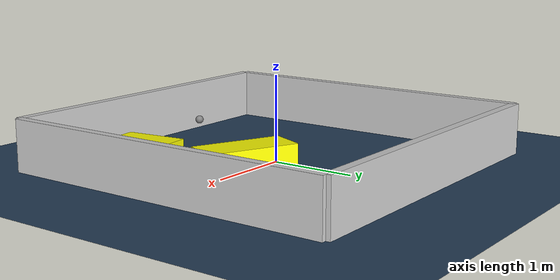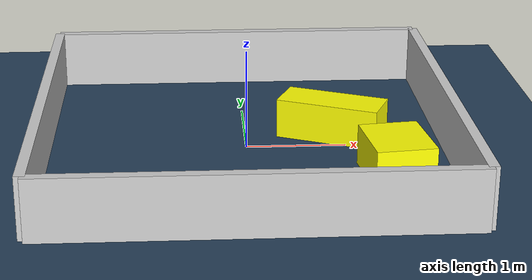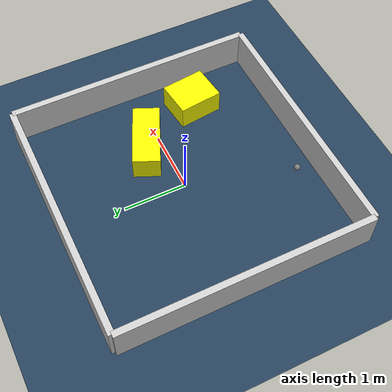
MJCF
<?xml version="1.0" ?>
<mujoco model="generated_environment">
  <option timestep="0.01" integrator="RK4" cone="elliptic"/>
  <default>
    <geom density="1"/>
  </default>
  <asset>
    <texture builtin="gradient" height="3072" rgb1="0.3 0.5 0.7" rgb2="0 0 0" type="skybox" width="512"/>
    <texture builtin="checker" height="300" mark="edge" markrgb="0.8 0.8 0.8" name="groundplane" rgb1="0.2 0.3 0.4" rgb2="0.1 0.2 0.3" type="2d" width="300"/>
    <material name="groundplane" reflectance="0.2" texrepeat="5 5" texture="groundplane" texuniform="true"/>
    <material name="robot" rgba="0.0 1.0 0.0 1"/>
  </asset>
  <worldbody>
    <light dir="0 0 -1" directional="true" pos="0 0 1.5"/>
    <geom condim="4" friction="1.0 0.005 0.001" material="groundplane" name="floor" size="0 0 0.05" type="plane"/>
    <body name="walls">
      <geom name="wall_1" condim="4" pos="-2.0 0.0 0.3" rgba="0.800000011920929 0.800000011920929 0.800000011920929 1.0" size="0.05 2.0 0.3" type="box"/>
      <geom name="wall_2" condim="4" pos="2.0 0.0 0.3" rgba="0.800000011920929 0.800000011920929 0.800000011920929 1.0" size="0.05 2.0 0.3" type="box"/>
      <geom name="wall_3" condim="4" pos="0.0 -2.0 0.3" rgba="0.800000011920929 0.800000011920929 0.800000011920929 1.0" size="2.0 0.05 0.3" type="box"/>
      <geom name="wall_4" condim="4" pos="0.0 2.0 0.3" rgba="0.800000011920929 0.800000011920929 0.800000011920929 1.0" size="2.0 0.05 0.3" type="box"/>
    </body>
    <body name="robot">
      <joint name="joint_x" type="slide" pos="0 0 0" axis="1 0 0"/>
      <joint name="joint_y" type="slide" pos="0 0 0" axis="0 1 0"/>
      <geom name="robot" type="sphere" pos="-0.5634388411843865 -1.629402177274316 0.2" size="0.05" mass="5." friction="1.0 0.005 0.0001" condim="4"/>
      <site name="sensor_ball"/>
    </body>
    <body name="obstacle_1_movable">
      <geom name="obstacle_1_movable" condim="4" pos="1.381368441552342 -0.7830837037250064 0.2" euler="0 0 186.79241558597272" friction="1.0 0.005 0.001" rgba="1 1 0 1" size="0.2909490639816036 0.35408565017887617 0.2" type="box" mass="0.1"/>
      <joint type="free"/>
    </body>
    <body name="obstacle_2_movable">
      <geom name="obstacle_2_movable" condim="4" pos="0.8848109212085782 0.24445340393712645 0.2" euler="0 0 66.1842611114625" friction="1.0 0.005 0.001" rgba="1 1 0 1" size="0.21416895422522236 0.5234556401225834 0.2" type="box" mass="0.1"/>
      <joint type="free"/>
    </body>
  </worldbody>
  <actuator>
    <motor name="actuator_x" joint="joint_x" gear="1" ctrlrange="-1 1"/>
    <motor name="actuator_y" joint="joint_y" gear="1" ctrlrange="-1 1"/>
  </actuator>
</mujoco>
